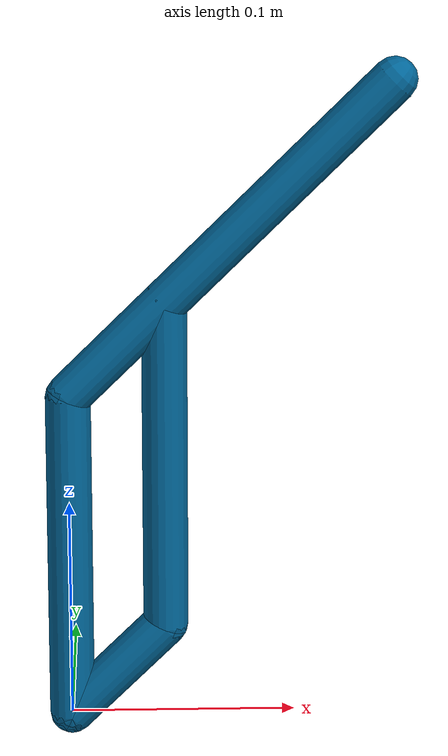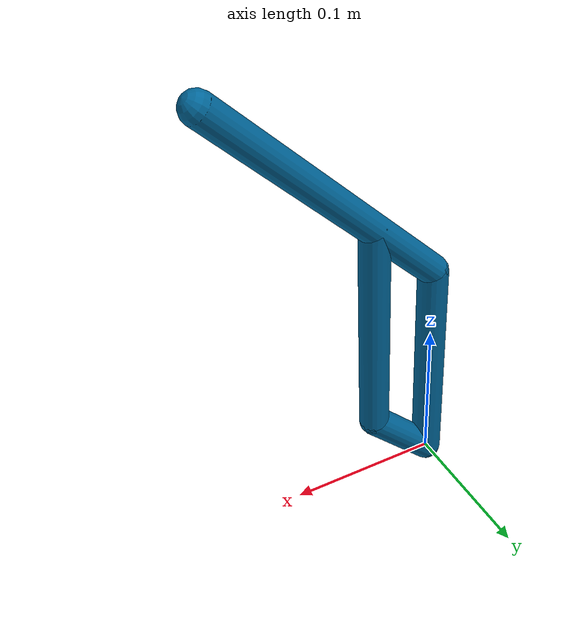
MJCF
<mujoco model="4bar">
    <compiler coordinate="local" />
    <option timestep="0.005" />
    <default>
        <geom rgba="0.0 0.4 0.6 1" contype='0' conaffinity='1'/>
        <equality solref='0.005 1'/>
    </default>

    <option gravity="1e-5 0 -9.81" integrator="RK4" timestep="0.01"/>

    <asset>
        <texture type='skybox' builtin='gradient' width='128' height='128' rgb1='0.4 0.6 0.8' rgb2='0 0 0'/>
        <texture name="texplane" type="2d" builtin="checker" rgb1=".4 .4 .4" rgb2=".6 .6 .6"
            width="512" height="512"/>
    </asset>

    <worldbody>
        <light directional="true" diffuse=".8 .8 .8" pos="0 0 10" dir="0 0 -10"/>

        <!-- Chain 1 -->
        <body name="body00" pos="0 0 0">
            <geom fromto="0 0 0 0 0 0.15" name="link0" size=".01" type="capsule"/>
            <joint axis="0 1 0" name="joint0" pos="0 0 0" type="hinge" damping="0.01"/>

            <body name="body01" pos="0 0 0.15">
                <!-- 0 0 0 -> 0.2in(pi/4) 0 0.2cos(pi/4) -->
                <geom fromto="0 0 0 0.1414 0 0.1414" name="link1"  size=".01"  type="capsule"/>
                <joint axis="0 1 0" name="joint1" pos="0 0 0" type="hinge"/>

                <body name="end0" pos="0.1414 0 0.1414">
                </body>
            </body>

            <!-- Chain 2 -->
            <body name="body10" pos="0 0 0">
                <!-- 0 0 0 -> 0.06sin(pi/4) 0 0.06cos(pi/4) -->
                <geom fromto="0 0 0 0.04242 0 0.04242" name="link2" size=".01" type="capsule"/>
                <joint axis="0 1 0" name="joint2" pos="0 0 0" type="hinge"/>

                <body name="body11" pos="0.04242 0 0.04242">
                    <geom fromto="0 0 0 0 0 0.15" name="link3"  size=".01"  type="capsule"/>
                    <joint axis="0 1 0" name="joint3" pos="0 0 0" type="hinge"/>

                    <body name="end1" pos="0 0 0.15">
                    </body>
                </body>
            </body>
        </body>

    </worldbody>

    <actuator>
    <!-- User parameter is the maximum no-load motor RPM -->
        <motor name='joint0'  joint='joint0' />
        <motor name='joint3'  joint='joint3' />
    </actuator>

    <equality>
        <connect body1="end1" body2="body01" anchor="0 0 0"/>
    </equality>
</mujoco>
